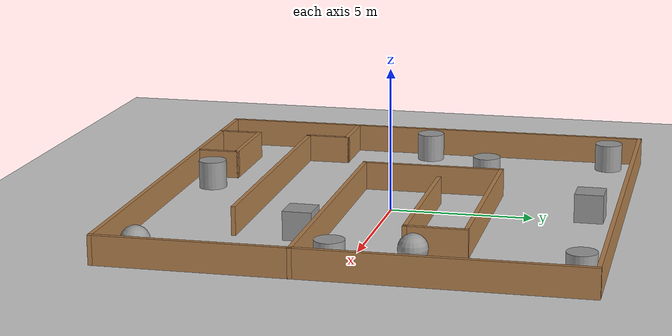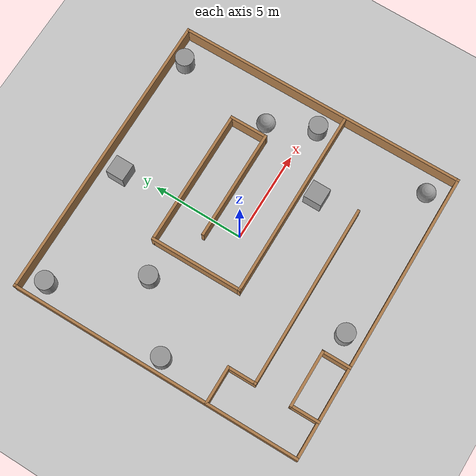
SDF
<sdf version="1.7">
 <world name="default">
  <light name="sun" type="directional">
   <pose>0 0 10 0 -0 0</pose>
   <diffuse>0.8 0.8 0.8 1</diffuse>
   <specular>0.2 0.2 0.2 1</specular>
   <attenuation>
    <range>1000</range>
    <constant>0.9</constant>
    <linear>0.01</linear>
    <quadratic>0.001</quadratic>
   </attenuation>
   <direction>-0.5 0.1 -0.9</direction>
   <spot><inner_angle>0</inner_angle><outer_angle>0</outer_angle><falloff>0</falloff></spot>
  </light>
  <model name="ground_plane">
   <static>1</static>
   <link name="link">
    <collision name="collision">
     <geometry><plane><normal>0 0 1</normal><size>100 100</size></plane></geometry>
     <surface>
      <contact><collide_bitmask>65535</collide_bitmask></contact>
      <friction><ode><mu>100</mu><mu2>50</mu2></ode></friction>
     </surface>
    </collision>
    <visual name="visual">
     <cast_shadows>0</cast_shadows>
     <geometry><plane><normal>0 0 1</normal><size>100 100</size></plane></geometry>
     <material>
      <script><uri>file://media/materials/scripts/gazebo.material</uri><name>Gazebo/Grey</name></script>
     </material>
    </visual>
   </link>
  </model>
  <gravity>0 0 -9.8</gravity>
  <magnetic_field>6e-06 2.3e-05 -4.2e-05</magnetic_field>
  <atmosphere type="adiabatic"/>
  <physics type="ode">
   <max_step_size>0.001</max_step_size>
   <real_time_factor>1</real_time_factor>
   <real_time_update_rate>1000</real_time_update_rate>
  </physics>
  <scene><ambient>0.4 0.4 0.4 1</ambient><background>0.7 0.7 0.7 1</background><shadows>1</shadows></scene>
  <spherical_coordinates>
   <surface_model>EARTH_WGS84</surface_model>
   <latitude_deg>0</latitude_deg>
   <longitude_deg>0</longitude_deg>
   <elevation>0</elevation>
   <heading_deg>0</heading_deg>
  </spherical_coordinates>
  <model name="maze1">
   <pose>0 0 0 0 -0 1.58147</pose>
   <link name="Wall_11">
    <collision name="Wall_11_Collision">
     <geometry><box><size>1.65 0.15 1</size></box></geometry>
     <pose>0 0 0.5 0 -0 0</pose>
    </collision>
    <visual name="Wall_11_Visual">
     <pose>0 0 0.5 0 -0 0</pose>
     <geometry><box><size>1.65 0.15 1</size></box></geometry>
     <material>
      <script><uri>file://media/materials/scripts/gazebo.material</uri><name>Gazebo/Wood</name></script>
      <ambient>1 1 1 1</ambient>
     </material>
     <meta><layer>0</layer></meta>
    </visual>
    <pose>-7.25 6 0 0 -0 0</pose>
   </link>
   <link name="Wall_12">
    <collision name="Wall_12_Collision">
     <geometry><box><size>3.15 0.15 1</size></box></geometry>
     <pose>0 0 0.5 0 -0 0</pose>
    </collision>
    <visual name="Wall_12_Visual">
     <pose>0 0 0.5 0 -0 0</pose>
     <geometry><box><size>3.15 0.15 1</size></box></geometry>
     <material>
      <script><uri>file://media/materials/scripts/gazebo.material</uri><name>Gazebo/Wood</name></script>
      <ambient>1 1 1 1</ambient>
     </material>
     <meta><layer>0</layer></meta>
    </visual>
    <pose>-6.5 4.5 0 0 -0 -1.5708</pose>
   </link>
   <link name="Wall_13">
    <collision name="Wall_13_Collision">
     <geometry><box><size>1.65 0.15 1</size></box></geometry>
     <pose>0 0 0.5 0 -0 0</pose>
    </collision>
    <visual name="Wall_13_Visual">
     <pose>0 0 0.5 0 -0 0</pose>
     <geometry><box><size>1.65 0.15 1</size></box></geometry>
     <material>
      <script><uri>file://media/materials/scripts/gazebo.material</uri><name>Gazebo/Wood</name></script>
      <ambient>1 1 1 1</ambient>
     </material>
     <meta><layer>0</layer></meta>
    </visual>
    <pose>-7.25 3 0 0 -0 3.14159</pose>
   </link>
   <link name="Wall_15">
    <collision name="Wall_15_Collision">
     <geometry><box><size>10.15 0.15 1</size></box></geometry>
     <pose>0 0 0.5 0 -0 0</pose>
    </collision>
    <visual name="Wall_15_Visual">
     <pose>0 0 0.5 0 -0 0</pose>
     <geometry><box><size>10.15 0.15 1</size></box></geometry>
     <material>
      <script><uri>file://media/materials/scripts/gazebo.material</uri><name>Gazebo/Wood</name></script>
      <ambient>1 1 1 1</ambient>
     </material>
     <meta><layer>0</layer></meta>
    </visual>
    <pose>-4.5 1 0 0 -0 -1.5708</pose>
   </link>
   <link name="Wall_2">
    <collision name="Wall_2_Collision">
     <geometry><box><size>16.15 0.15 1</size></box></geometry>
     <pose>0 0 0.5 0 -0 0</pose>
    </collision>
    <visual name="Wall_2_Visual">
     <pose>0 0 0.5 0 -0 0</pose>
     <geometry><box><size>16.15 0.15 1</size></box></geometry>
     <material>
      <script><uri>file://media/materials/scripts/gazebo.material</uri><name>Gazebo/Wood</name></script>
      <ambient>1 1 1 1</ambient>
     </material>
     <meta><layer>0</layer></meta>
    </visual>
    <pose>0 8 0 0 -0 0</pose>
   </link>
   <link name="Wall_26">
    <collision name="Wall_26_Collision">
     <geometry><box><size>10.65 0.15 1</size></box></geometry>
     <pose>0 0 0.5 0 -0 0</pose>
    </collision>
    <visual name="Wall_26_Visual">
     <pose>0 0 0.5 0 -0 0</pose>
     <geometry><box><size>10.65 0.15 1</size></box></geometry>
     <material>
      <script><uri>file://media/materials/scripts/gazebo.material</uri><name>Gazebo/Wood</name></script>
      <ambient>1 1 1 1</ambient>
     </material>
     <meta><layer>0</layer></meta>
    </visual>
    <pose>-1.5 -2.75 0 0 -0 1.5708</pose>
   </link>
   <link name="Wall_27">
    <collision name="Wall_27_Collision">
     <geometry><box><size>5.15 0.15 1</size></box></geometry>
     <pose>0 0 0.5 0 -0 0</pose>
    </collision>
    <visual name="Wall_27_Visual">
     <pose>0 0 0.5 0 -0 0</pose>
     <geometry><box><size>5.15 0.15 1</size></box></geometry>
     <material>
      <script><uri>file://media/materials/scripts/gazebo.material</uri><name>Gazebo/Wood</name></script>
      <ambient>1 1 1 1</ambient>
     </material>
     <meta><layer>0</layer></meta>
    </visual>
    <pose>1 2.5 0 0 -0 0</pose>
   </link>
   <link name="Wall_28">
    <collision name="Wall_28_Collision">
     <geometry><box><size>7.65 0.15 1</size></box></geometry>
     <pose>0 0 0.5 0 -0 0</pose>
    </collision>
    <visual name="Wall_28_Visual">
     <pose>0 0 0.5 0 -0 0</pose>
     <geometry><box><size>7.65 0.15 1</size></box></geometry>
     <material>
      <script><uri>file://media/materials/scripts/gazebo.material</uri><name>Gazebo/Wood</name></script>
      <ambient>1 1 1 1</ambient>
     </material>
     <meta><layer>0</layer></meta>
    </visual>
    <pose>3.5 -1.25 0 0 -0 -1.5708</pose>
   </link>
   <link name="Wall_29">
    <collision name="Wall_29_Collision">
     <geometry><box><size>2.15 0.15 1</size></box></geometry>
     <pose>0 0 0.5 0 -0 0</pose>
    </collision>
    <visual name="Wall_29_Visual">
     <pose>0 0 0.5 0 -0 0</pose>
     <geometry><box><size>2.15 0.15 1</size></box></geometry>
     <material>
      <script><uri>file://media/materials/scripts/gazebo.material</uri><name>Gazebo/Wood</name></script>
      <ambient>1 1 1 1</ambient>
     </material>
     <meta><layer>0</layer></meta>
    </visual>
    <pose>2.5 -5 0 0 -0 3.14159</pose>
   </link>
   <link name="Wall_3">
    <collision name="Wall_3_Collision">
     <geometry><box><size>16.15 0.15 1</size></box></geometry>
     <pose>0 0 0.5 0 -0 0</pose>
    </collision>
    <visual name="Wall_3_Visual">
     <pose>0 0 0.5 0 -0 0</pose>
     <geometry><box><size>16.15 0.15 1</size></box></geometry>
     <material>
      <script><uri>file://media/materials/scripts/gazebo.material</uri><name>Gazebo/Wood</name></script>
      <ambient>1 1 1 1</ambient>
     </material>
     <meta><layer>0</layer></meta>
    </visual>
    <pose>8 0 0 0 -0 -1.5708</pose>
   </link>
   <link name="Wall_30">
    <collision name="Wall_30_Collision">
     <geometry><box><size>6.15 0.15 1</size></box></geometry>
     <pose>0 0 0.5 0 -0 0</pose>
    </collision>
    <visual name="Wall_30_Visual">
     <pose>0 0 0.5 0 -0 0</pose>
     <geometry><box><size>6.15 0.15 1</size></box></geometry>
     <material>
      <script><uri>file://media/materials/scripts/gazebo.material</uri><name>Gazebo/Wood</name></script>
      <ambient>1 1 1 1</ambient>
     </material>
     <meta><layer>0</layer></meta>
    </visual>
    <pose>1.5 -2 0 0 -0 1.5708</pose>
   </link>
   <link name="Wall_4">
    <collision name="Wall_4_Collision">
     <geometry><box><size>16.15 0.15 1</size></box></geometry>
     <pose>0 0 0.5 0 -0 0</pose>
    </collision>
    <visual name="Wall_4_Visual">
     <pose>0 0 0.5 0 -0 0</pose>
     <geometry><box><size>16.15 0.15 1</size></box></geometry>
     <material>
      <script><uri>file://media/materials/scripts/gazebo.material</uri><name>Gazebo/Wood</name></script>
      <ambient>1 1 1 1</ambient>
     </material>
     <meta><layer>0</layer></meta>
    </visual>
    <pose>0 -8 0 0 -0 3.14159</pose>
   </link>
   <link name="Wall_5">
    <collision name="Wall_5_Collision">
     <geometry><box><size>16.15 0.15 1</size></box></geometry>
     <pose>0 0 0.5 0 -0 0</pose>
    </collision>
    <visual name="Wall_5_Visual">
     <pose>0 0 0.5 0 -0 0</pose>
     <geometry><box><size>16.15 0.15 1</size></box></geometry>
     <material>
      <script><uri>file://media/materials/scripts/gazebo.material</uri><name>Gazebo/Wood</name></script>
      <ambient>1 1 1 1</ambient>
     </material>
     <meta><layer>0</layer></meta>
    </visual>
    <pose>-8 0 0 0 -0 1.5708</pose>
   </link>
   <link name="Wall_7">
    <collision name="Wall_7_Collision">
     <geometry><box><size>2.15 0.15 1</size></box></geometry>
     <pose>0 0 0.5 0 -0 0</pose>
    </collision>
    <visual name="Wall_7_Visual">
     <pose>0 0 0.5 0 -0 0</pose>
     <geometry><box><size>2.15 0.15 1</size></box></geometry>
     <material>
      <script><uri>file://media/materials/scripts/gazebo.material</uri><name>Gazebo/Wood</name></script>
      <ambient>1 1 1 1</ambient>
     </material>
     <meta><layer>0</layer></meta>
    </visual>
    <pose>-3 7 0 0 -0 -1.5708</pose>
   </link>
   <link name="Wall_8">
    <collision name="Wall_8_Collision">
     <geometry><box><size>1.65 0.15 1</size></box></geometry>
     <pose>0 0 0.5 0 -0 0</pose>
    </collision>
    <visual name="Wall_8_Visual">
     <pose>0 0 0.5 0 -0 0</pose>
     <geometry><box><size>1.65 0.15 1</size></box></geometry>
     <material>
      <script><uri>file://media/materials/scripts/gazebo.material</uri><name>Gazebo/Wood</name></script>
      <ambient>1 1 1 1</ambient>
     </material>
     <meta><layer>0</layer></meta>
    </visual>
    <pose>-3.75 6 0 0 -0 3.14159</pose>
   </link>
   <static>1</static>
  </model>
  <model name="unit_cylinder">
   <pose>6.93362 -0.432121 0.499993 -3e-06 3e-06 0</pose>
   <link name="link">
    <inertial>
     <mass>1</mass>
     <inertia><ixx>0.145833</ixx><ixy>0</ixy><ixz>0</ixz><iyy>0.145833</iyy><iyz>0</iyz><izz>0.125</izz></inertia>
    </inertial>
    <collision name="collision">
     <geometry><cylinder><radius>0.5</radius><length>1</length></cylinder></geometry>
    </collision>
    <visual name="visual">
     <geometry><cylinder><radius>0.5</radius><length>1</length></cylinder></geometry>
     <material>
      <script><name>Gazebo/Grey</name><uri>file://media/materials/scripts/gazebo.material</uri></script>
     </material>
    </visual>
   </link>
  </model>
  <model name="unit_cylinder_0">
   <pose>-4.2038 2.66621 0.499998 3e-06 -3e-06 0</pose>
   <link name="link">
    <inertial>
     <mass>1</mass>
     <inertia><ixx>0.145833</ixx><ixy>0</ixy><ixz>0</ixz><iyy>0.145833</iyy><iyz>0</iyz><izz>0.125</izz></inertia>
    </inertial>
    <collision name="collision">
     <geometry><cylinder><radius>0.5</radius><length>1</length></cylinder></geometry>
    </collision>
    <visual name="visual">
     <geometry><cylinder><radius>0.5</radius><length>1</length></cylinder></geometry>
     <material>
      <script><name>Gazebo/Grey</name><uri>file://media/materials/scripts/gazebo.material</uri></script>
     </material>
    </visual>
   </link>
  </model>
  <model name="unit_cylinder_1">
   <pose>6.50003 7.41266 0.499992 -3e-06 3e-06 0</pose>
   <link name="link">
    <inertial>
     <mass>1</mass>
     <inertia><ixx>0.145833</ixx><ixy>0</ixy><ixz>0</ixz><iyy>0.145833</iyy><iyz>0</iyz><izz>0.125</izz></inertia>
    </inertial>
    <collision name="collision">
     <geometry><cylinder><radius>0.5</radius><length>1</length></cylinder></geometry>
    </collision>
    <visual name="visual">
     <geometry><cylinder><radius>0.5</radius><length>1</length></cylinder></geometry>
     <material>
      <script><name>Gazebo/Grey</name><uri>file://media/materials/scripts/gazebo.material</uri></script>
     </material>
    </visual>
   </link>
  </model>
  <model name="unit_box">
   <pose>3.78344 -2.22687 0.499995 -1e-05 -0 -0</pose>
   <link name="link">
    <inertial>
     <mass>1</mass>
     <inertia>
      <ixx>0.166667</ixx>
      <ixy>0</ixy>
      <ixz>0</ixz>
      <iyy>0.166667</iyy>
      <iyz>0</iyz>
      <izz>0.166667</izz>
     </inertia>
    </inertial>
    <collision name="collision"><geometry><box><size>1 1 1</size></box></geometry></collision>
    <visual name="visual">
     <geometry><box><size>1 1 1</size></box></geometry>
     <material>
      <script><name>Gazebo/Grey</name><uri>file://media/materials/scripts/gazebo.material</uri></script>
     </material>
    </visual>
   </link>
  </model>
  <model name="unit_cylinder_2">
   <pose>-1.55265 -7.01919 0.499992 -3e-06 3e-06 0</pose>
   <link name="link">
    <inertial>
     <mass>1</mass>
     <inertia><ixx>0.145833</ixx><ixy>0</ixy><ixz>0</ixz><iyy>0.145833</iyy><iyz>0</iyz><izz>0.125</izz></inertia>
    </inertial>
    <collision name="collision">
     <geometry><cylinder><radius>0.5</radius><length>1</length></cylinder></geometry>
    </collision>
    <visual name="visual">
     <geometry><cylinder><radius>0.5</radius><length>1</length></cylinder></geometry>
     <material>
      <script><name>Gazebo/Grey</name><uri>file://media/materials/scripts/gazebo.material</uri></script>
     </material>
    </visual>
   </link>
  </model>
  <model name="unit_sphere">
   <pose>6.84627 -6.88063 0.5 0 -0 0</pose>
   <link name="link">
    <inertial>
     <mass>1</mass>
     <inertia><ixx>0.1</ixx><ixy>0</ixy><ixz>0</ixz><iyy>0.1</iyy><iyz>0</iyz><izz>0.1</izz></inertia>
    </inertial>
    <collision name="collision"><geometry><sphere><radius>0.5</radius></sphere></geometry></collision>
    <visual name="visual">
     <geometry><sphere><radius>0.5</radius></sphere></geometry>
     <material>
      <script><name>Gazebo/Grey</name><uri>file://media/materials/scripts/gazebo.material</uri></script>
     </material>
    </visual>
   </link>
  </model>
  <model name="unit_box_0">
   <pose>-0.342756 6.9134 0.499995 0 1e-05 0</pose>
   <link name="link">
    <inertial>
     <mass>1</mass>
     <inertia>
      <ixx>0.166667</ixx>
      <ixy>0</ixy>
      <ixz>0</ixz>
      <iyy>0.166667</iyy>
      <iyz>0</iyz>
      <izz>0.166667</izz>
     </inertia>
    </inertial>
    <collision name="collision"><geometry><box><size>1 1 1</size></box></geometry></collision>
    <visual name="visual">
     <geometry><box><size>1 1 1</size></box></geometry>
     <material>
      <script><name>Gazebo/Grey</name><uri>file://media/materials/scripts/gazebo.material</uri></script>
     </material>
    </visual>
   </link>
  </model>
  <model name="unit_cylinder_3">
   <pose>-7.25067 -0.030343 0.499998 3e-06 -4e-06 0</pose>
   <link name="link">
    <inertial>
     <mass>1</mass>
     <inertia><ixx>0.145833</ixx><ixy>0</ixy><ixz>0</ixz><iyy>0.145833</iyy><iyz>0</iyz><izz>0.125</izz></inertia>
    </inertial>
    <collision name="collision">
     <geometry><cylinder><radius>0.5</radius><length>1</length></cylinder></geometry>
    </collision>
    <visual name="visual">
     <geometry><cylinder><radius>0.5</radius><length>1</length></cylinder></geometry>
     <material>
      <script><name>Gazebo/Grey</name><uri>file://media/materials/scripts/gazebo.material</uri></script>
     </material>
    </visual>
   </link>
  </model>
  <model name="unit_sphere_0">
   <pose>5.77642 1.99029 0.5 0 -0 0</pose>
   <link name="link">
    <inertial>
     <mass>1</mass>
     <inertia><ixx>0.1</ixx><ixy>0</ixy><ixz>0</ixz><iyy>0.1</iyy><iyz>0</iyz><izz>0.1</izz></inertia>
    </inertial>
    <collision name="collision"><geometry><sphere><radius>0.5</radius></sphere></geometry></collision>
    <visual name="visual">
     <geometry><sphere><radius>0.5</radius></sphere></geometry>
     <material>
      <script><name>Gazebo/Grey</name><uri>file://media/materials/scripts/gazebo.material</uri></script>
     </material>
    </visual>
   </link>
  </model>
  <model name="unit_cylinder_4">
   <pose>-7.11215 6.84446 0.499998 3e-06 -4e-06 0</pose>
   <link name="link">
    <inertial>
     <mass>1</mass>
     <inertia><ixx>0.145833</ixx><ixy>0</ixy><ixz>0</ixz><iyy>0.145833</iyy><iyz>0</iyz><izz>0.125</izz></inertia>
    </inertial>
    <collision name="collision">
     <geometry><cylinder><radius>0.5</radius><length>1</length></cylinder></geometry>
    </collision>
    <visual name="visual">
     <geometry><cylinder><radius>0.5</radius><length>1</length></cylinder></geometry>
     <material>
      <script><name>Gazebo/Grey</name><uri>file://media/materials/scripts/gazebo.material</uri></script>
     </material>
    </visual>
   </link>
  </model>
 </world>
</sdf>
